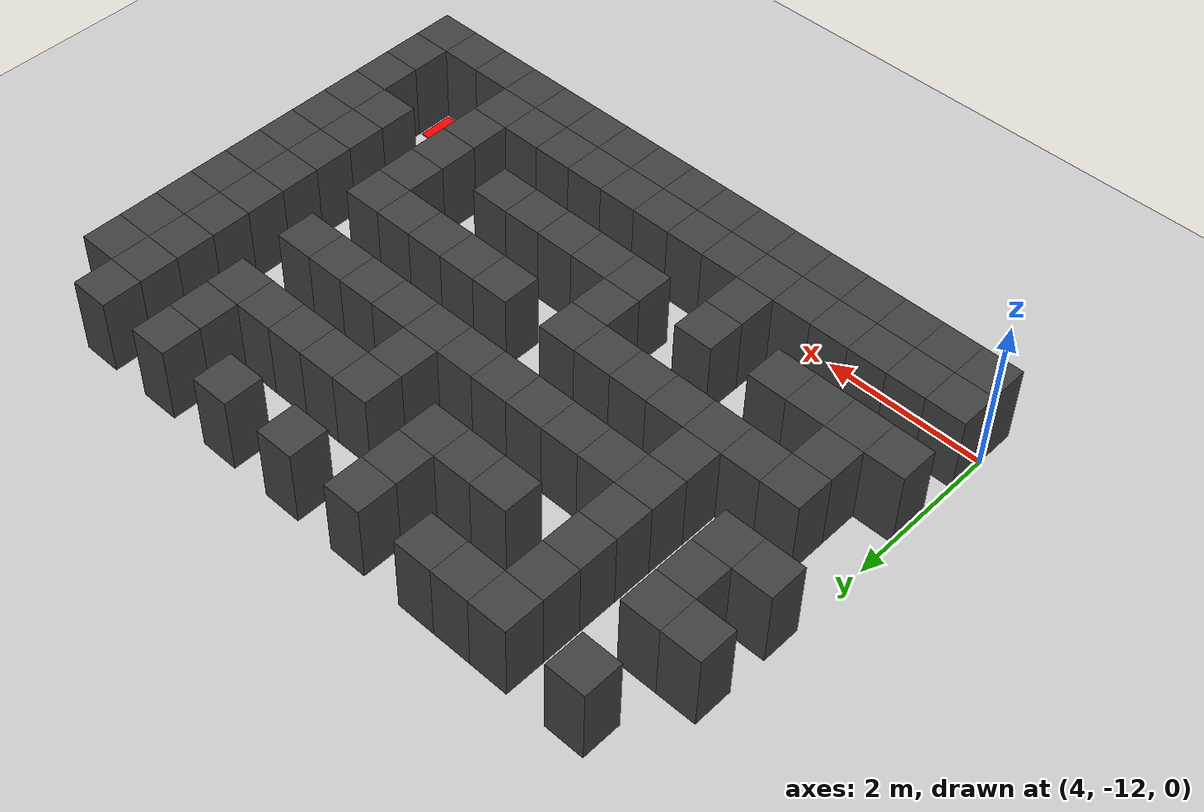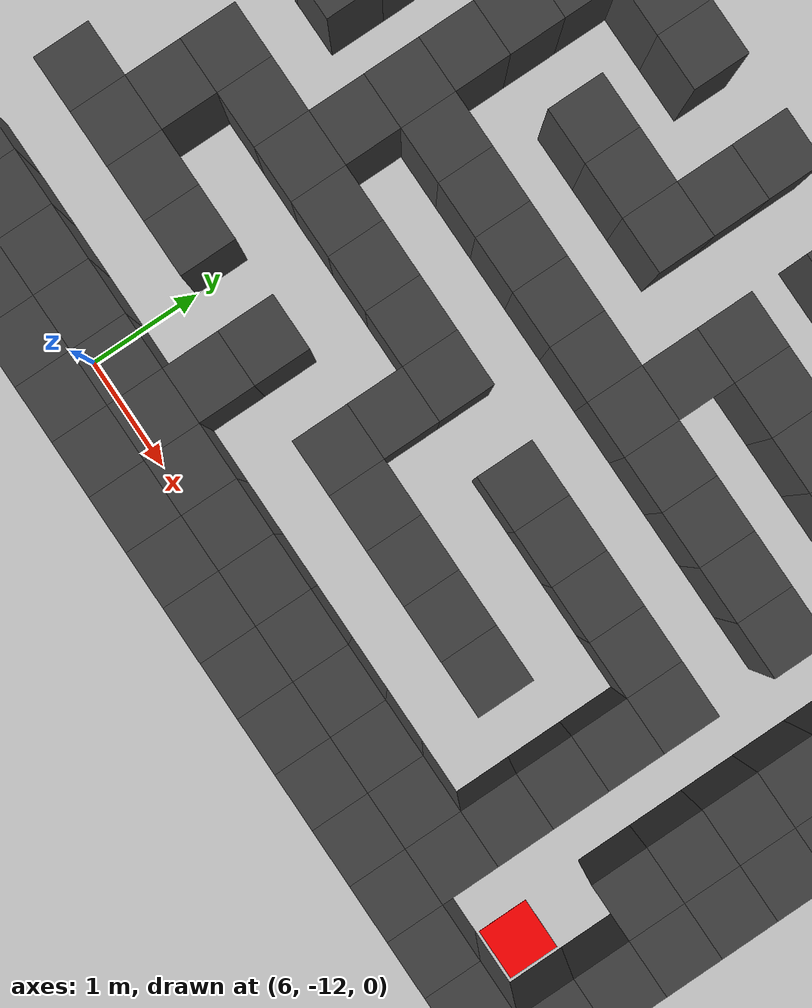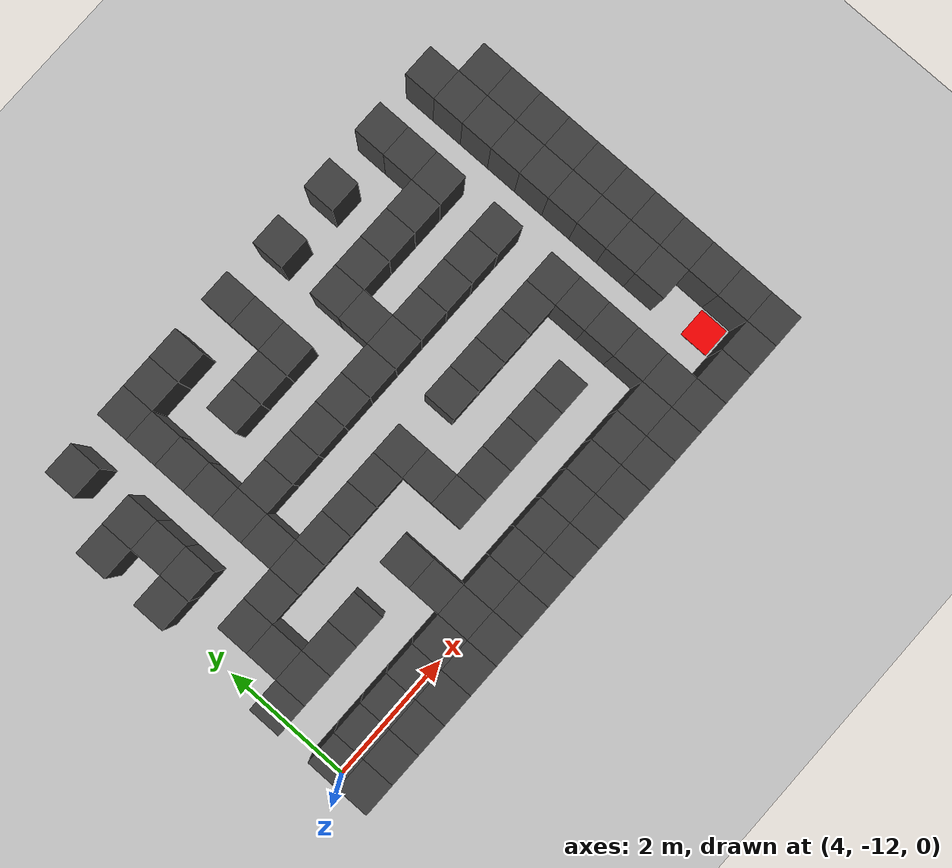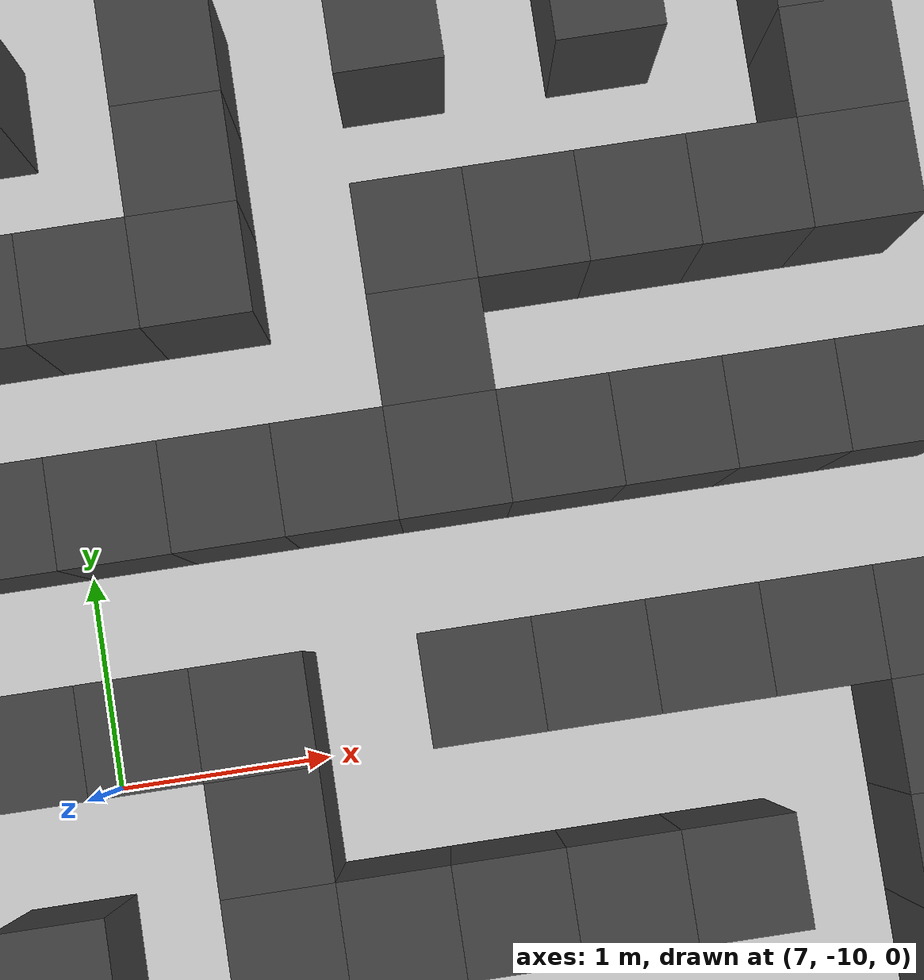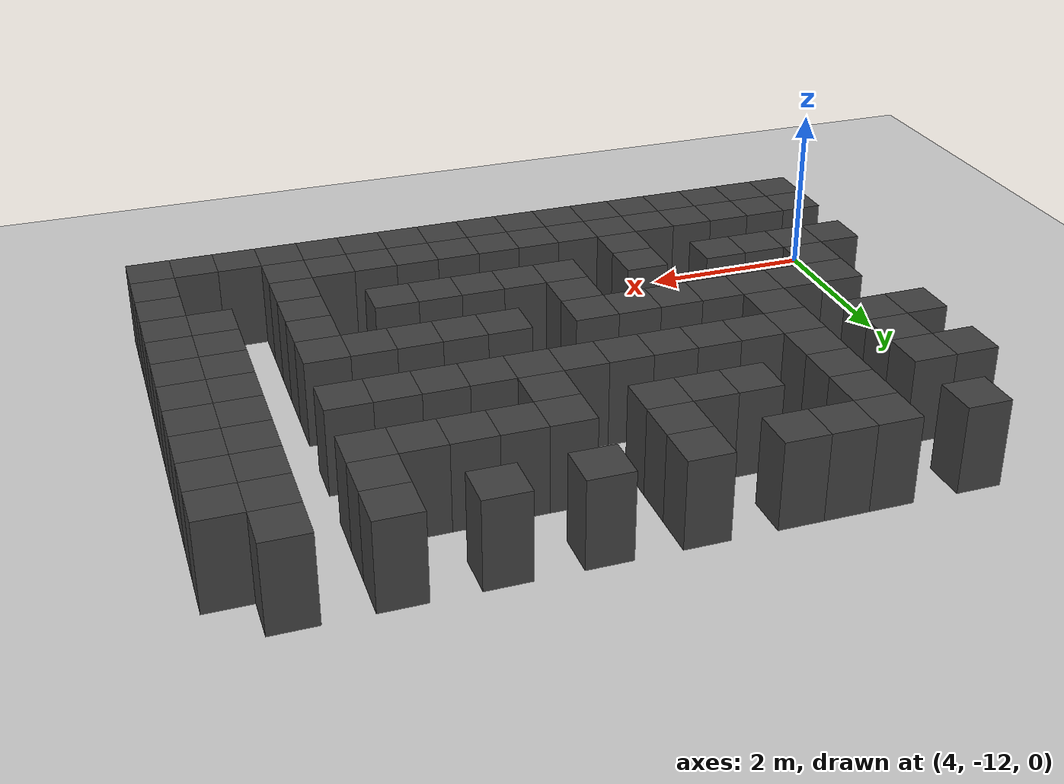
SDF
<sdf version="1.7">
 <world name="map_18505">
  <model name="ground_plane">
   <static>true</static>
   <link name="link">
    <collision name="collision">
     <geometry><plane><normal>0 0 1</normal><size>200 200</size></plane></geometry>
    </collision>
    <visual name="visual">
     <geometry><plane><normal>0 0 1</normal><size>200 200</size></plane></geometry>
     <material><ambient>0.8 0.8 0.8 1</ambient><diffuse>0.8 0.8 0.8 1</diffuse></material>
    </visual>
   </link>
  </model>
  <model name="maze_environment">
   <static>true</static>
   <link name="wall_982">
    <pose>4.750 -6.750 0.500 0 0 0</pose>
    <collision name="col"><geometry><box><size>0.5 0.5 1.0</size></box></geometry></collision>
    <visual name="vis">
     <geometry><box><size>0.5 0.5 1.0</size></box></geometry>
     <material><ambient>0.15 0.15 0.15 1</ambient><diffuse>0.25 0.25 0.25 1</diffuse></material>
    </visual>
   </link>
   <link name="wall_983">
    <pose>5.750 -6.750 0.500 0 0 0</pose>
    <collision name="col"><geometry><box><size>0.5 0.5 1.0</size></box></geometry></collision>
    <visual name="vis">
     <geometry><box><size>0.5 0.5 1.0</size></box></geometry>
     <material><ambient>0.15 0.15 0.15 1</ambient><diffuse>0.25 0.25 0.25 1</diffuse></material>
    </visual>
   </link>
   <link name="wall_984">
    <pose>6.250 -6.750 0.500 0 0 0</pose>
    <collision name="col"><geometry><box><size>0.5 0.5 1.0</size></box></geometry></collision>
    <visual name="vis">
     <geometry><box><size>0.5 0.5 1.0</size></box></geometry>
     <material><ambient>0.15 0.15 0.15 1</ambient><diffuse>0.25 0.25 0.25 1</diffuse></material>
    </visual>
   </link>
   <link name="wall_985">
    <pose>6.750 -6.750 0.500 0 0 0</pose>
    <collision name="col"><geometry><box><size>0.5 0.5 1.0</size></box></geometry></collision>
    <visual name="vis">
     <geometry><box><size>0.5 0.5 1.0</size></box></geometry>
     <material><ambient>0.15 0.15 0.15 1</ambient><diffuse>0.25 0.25 0.25 1</diffuse></material>
    </visual>
   </link>
   <link name="wall_986">
    <pose>7.750 -6.750 0.500 0 0 0</pose>
    <collision name="col"><geometry><box><size>0.5 0.5 1.0</size></box></geometry></collision>
    <visual name="vis">
     <geometry><box><size>0.5 0.5 1.0</size></box></geometry>
     <material><ambient>0.15 0.15 0.15 1</ambient><diffuse>0.25 0.25 0.25 1</diffuse></material>
    </visual>
   </link>
   <link name="wall_987">
    <pose>8.750 -6.750 0.500 0 0 0</pose>
    <collision name="col"><geometry><box><size>0.5 0.5 1.0</size></box></geometry></collision>
    <visual name="vis">
     <geometry><box><size>0.5 0.5 1.0</size></box></geometry>
     <material><ambient>0.15 0.15 0.15 1</ambient><diffuse>0.25 0.25 0.25 1</diffuse></material>
    </visual>
   </link>
   <link name="wall_988">
    <pose>9.750 -6.750 0.500 0 0 0</pose>
    <collision name="col"><geometry><box><size>0.5 0.5 1.0</size></box></geometry></collision>
    <visual name="vis">
     <geometry><box><size>0.5 0.5 1.0</size></box></geometry>
     <material><ambient>0.15 0.15 0.15 1</ambient><diffuse>0.25 0.25 0.25 1</diffuse></material>
    </visual>
   </link>
   <link name="wall_989">
    <pose>10.750 -6.750 0.500 0 0 0</pose>
    <collision name="col"><geometry><box><size>0.5 0.5 1.0</size></box></geometry></collision>
    <visual name="vis">
     <geometry><box><size>0.5 0.5 1.0</size></box></geometry>
     <material><ambient>0.15 0.15 0.15 1</ambient><diffuse>0.25 0.25 0.25 1</diffuse></material>
    </visual>
   </link>
   <link name="wall_990">
    <pose>11.750 -6.750 0.500 0 0 0</pose>
    <collision name="col"><geometry><box><size>0.5 0.5 1.0</size></box></geometry></collision>
    <visual name="vis">
     <geometry><box><size>0.5 0.5 1.0</size></box></geometry>
     <material><ambient>0.15 0.15 0.15 1</ambient><diffuse>0.25 0.25 0.25 1</diffuse></material>
    </visual>
   </link>
   <link name="wall_999">
    <pose>5.750 -7.250 0.500 0 0 0</pose>
    <collision name="col"><geometry><box><size>0.5 0.5 1.0</size></box></geometry></collision>
    <visual name="vis">
     <geometry><box><size>0.5 0.5 1.0</size></box></geometry>
     <material><ambient>0.15 0.15 0.15 1</ambient><diffuse>0.25 0.25 0.25 1</diffuse></material>
    </visual>
   </link>
   <link name="wall_1000">
    <pose>7.750 -7.250 0.500 0 0 0</pose>
    <collision name="col"><geometry><box><size>0.5 0.5 1.0</size></box></geometry></collision>
    <visual name="vis">
     <geometry><box><size>0.5 0.5 1.0</size></box></geometry>
     <material><ambient>0.15 0.15 0.15 1</ambient><diffuse>0.25 0.25 0.25 1</diffuse></material>
    </visual>
   </link>
   <link name="wall_1001">
    <pose>10.750 -7.250 0.500 0 0 0</pose>
    <collision name="col"><geometry><box><size>0.5 0.5 1.0</size></box></geometry></collision>
    <visual name="vis">
     <geometry><box><size>0.5 0.5 1.0</size></box></geometry>
     <material><ambient>0.15 0.15 0.15 1</ambient><diffuse>0.25 0.25 0.25 1</diffuse></material>
    </visual>
   </link>
   <link name="wall_1002">
    <pose>11.750 -7.250 0.500 0 0 0</pose>
    <collision name="col"><geometry><box><size>0.5 0.5 1.0</size></box></geometry></collision>
    <visual name="vis">
     <geometry><box><size>0.5 0.5 1.0</size></box></geometry>
     <material><ambient>0.15 0.15 0.15 1</ambient><diffuse>0.25 0.25 0.25 1</diffuse></material>
    </visual>
   </link>
   <link name="wall_1003">
    <pose>12.250 -7.250 0.500 0 0 0</pose>
    <collision name="col"><geometry><box><size>0.5 0.5 1.0</size></box></geometry></collision>
    <visual name="vis">
     <geometry><box><size>0.5 0.5 1.0</size></box></geometry>
     <material><ambient>0.15 0.15 0.15 1</ambient><diffuse>0.25 0.25 0.25 1</diffuse></material>
    </visual>
   </link>
   <link name="wall_1028">
    <pose>4.250 -7.750 0.500 0 0 0</pose>
    <collision name="col"><geometry><box><size>0.5 0.5 1.0</size></box></geometry></collision>
    <visual name="vis">
     <geometry><box><size>0.5 0.5 1.0</size></box></geometry>
     <material><ambient>0.15 0.15 0.15 1</ambient><diffuse>0.25 0.25 0.25 1</diffuse></material>
    </visual>
   </link>
   <link name="wall_1029">
    <pose>4.750 -7.750 0.500 0 0 0</pose>
    <collision name="col"><geometry><box><size>0.5 0.5 1.0</size></box></geometry></collision>
    <visual name="vis">
     <geometry><box><size>0.5 0.5 1.0</size></box></geometry>
     <material><ambient>0.15 0.15 0.15 1</ambient><diffuse>0.25 0.25 0.25 1</diffuse></material>
    </visual>
   </link>
   <link name="wall_1030">
    <pose>5.750 -7.750 0.500 0 0 0</pose>
    <collision name="col"><geometry><box><size>0.5 0.5 1.0</size></box></geometry></collision>
    <visual name="vis">
     <geometry><box><size>0.5 0.5 1.0</size></box></geometry>
     <material><ambient>0.15 0.15 0.15 1</ambient><diffuse>0.25 0.25 0.25 1</diffuse></material>
    </visual>
   </link>
   <link name="wall_1031">
    <pose>6.750 -7.750 0.500 0 0 0</pose>
    <collision name="col"><geometry><box><size>0.5 0.5 1.0</size></box></geometry></collision>
    <visual name="vis">
     <geometry><box><size>0.5 0.5 1.0</size></box></geometry>
     <material><ambient>0.15 0.15 0.15 1</ambient><diffuse>0.25 0.25 0.25 1</diffuse></material>
    </visual>
   </link>
   <link name="wall_1032">
    <pose>7.250 -7.750 0.500 0 0 0</pose>
    <collision name="col"><geometry><box><size>0.5 0.5 1.0</size></box></geometry></collision>
    <visual name="vis">
     <geometry><box><size>0.5 0.5 1.0</size></box></geometry>
     <material><ambient>0.15 0.15 0.15 1</ambient><diffuse>0.25 0.25 0.25 1</diffuse></material>
    </visual>
   </link>
   <link name="wall_1033">
    <pose>7.750 -7.750 0.500 0 0 0</pose>
    <collision name="col"><geometry><box><size>0.5 0.5 1.0</size></box></geometry></collision>
    <visual name="vis">
     <geometry><box><size>0.5 0.5 1.0</size></box></geometry>
     <material><ambient>0.15 0.15 0.15 1</ambient><diffuse>0.25 0.25 0.25 1</diffuse></material>
    </visual>
   </link>
   <link name="wall_1034">
    <pose>8.750 -7.750 0.500 0 0 0</pose>
    <collision name="col"><geometry><box><size>0.5 0.5 1.0</size></box></geometry></collision>
    <visual name="vis">
     <geometry><box><size>0.5 0.5 1.0</size></box></geometry>
     <material><ambient>0.15 0.15 0.15 1</ambient><diffuse>0.25 0.25 0.25 1</diffuse></material>
    </visual>
   </link>
   <link name="wall_1035">
    <pose>9.250 -7.750 0.500 0 0 0</pose>
    <collision name="col"><geometry><box><size>0.5 0.5 1.0</size></box></geometry></collision>
    <visual name="vis">
     <geometry><box><size>0.5 0.5 1.0</size></box></geometry>
     <material><ambient>0.15 0.15 0.15 1</ambient><diffuse>0.25 0.25 0.25 1</diffuse></material>
    </visual>
   </link>
   <link name="wall_1036">
    <pose>9.750 -7.750 0.500 0 0 0</pose>
    <collision name="col"><geometry><box><size>0.5 0.5 1.0</size></box></geometry></collision>
    <visual name="vis">
     <geometry><box><size>0.5 0.5 1.0</size></box></geometry>
     <material><ambient>0.15 0.15 0.15 1</ambient><diffuse>0.25 0.25 0.25 1</diffuse></material>
    </visual>
   </link>
   <link name="wall_1037">
    <pose>10.250 -7.750 0.500 0 0 0</pose>
    <collision name="col"><geometry><box><size>0.5 0.5 1.0</size></box></geometry></collision>
    <visual name="vis">
     <geometry><box><size>0.5 0.5 1.0</size></box></geometry>
     <material><ambient>0.15 0.15 0.15 1</ambient><diffuse>0.25 0.25 0.25 1</diffuse></material>
    </visual>
   </link>
   <link name="wall_1038">
    <pose>10.750 -7.750 0.500 0 0 0</pose>
    <collision name="col"><geometry><box><size>0.5 0.5 1.0</size></box></geometry></collision>
    <visual name="vis">
     <geometry><box><size>0.5 0.5 1.0</size></box></geometry>
     <material><ambient>0.15 0.15 0.15 1</ambient><diffuse>0.25 0.25 0.25 1</diffuse></material>
    </visual>
   </link>
   <link name="wall_1039">
    <pose>11.750 -7.750 0.500 0 0 0</pose>
    <collision name="col"><geometry><box><size>0.5 0.5 1.0</size></box></geometry></collision>
    <visual name="vis">
     <geometry><box><size>0.5 0.5 1.0</size></box></geometry>
     <material><ambient>0.15 0.15 0.15 1</ambient><diffuse>0.25 0.25 0.25 1</diffuse></material>
    </visual>
   </link>
   <link name="wall_1040">
    <pose>12.250 -7.750 0.500 0 0 0</pose>
    <collision name="col"><geometry><box><size>0.5 0.5 1.0</size></box></geometry></collision>
    <visual name="vis">
     <geometry><box><size>0.5 0.5 1.0</size></box></geometry>
     <material><ambient>0.15 0.15 0.15 1</ambient><diffuse>0.25 0.25 0.25 1</diffuse></material>
    </visual>
   </link>
   <link name="wall_1049">
    <pose>4.750 -8.250 0.500 0 0 0</pose>
    <collision name="col"><geometry><box><size>0.5 0.5 1.0</size></box></geometry></collision>
    <visual name="vis">
     <geometry><box><size>0.5 0.5 1.0</size></box></geometry>
     <material><ambient>0.15 0.15 0.15 1</ambient><diffuse>0.25 0.25 0.25 1</diffuse></material>
    </visual>
   </link>
   <link name="wall_1050">
    <pose>5.750 -8.250 0.500 0 0 0</pose>
    <collision name="col"><geometry><box><size>0.5 0.5 1.0</size></box></geometry></collision>
    <visual name="vis">
     <geometry><box><size>0.5 0.5 1.0</size></box></geometry>
     <material><ambient>0.15 0.15 0.15 1</ambient><diffuse>0.25 0.25 0.25 1</diffuse></material>
    </visual>
   </link>
   <link name="wall_1051">
    <pose>8.750 -8.250 0.500 0 0 0</pose>
    <collision name="col"><geometry><box><size>0.5 0.5 1.0</size></box></geometry></collision>
    <visual name="vis">
     <geometry><box><size>0.5 0.5 1.0</size></box></geometry>
     <material><ambient>0.15 0.15 0.15 1</ambient><diffuse>0.25 0.25 0.25 1</diffuse></material>
    </visual>
   </link>
   <link name="wall_1052">
    <pose>11.750 -8.250 0.500 0 0 0</pose>
    <collision name="col"><geometry><box><size>0.5 0.5 1.0</size></box></geometry></collision>
    <visual name="vis">
     <geometry><box><size>0.5 0.5 1.0</size></box></geometry>
     <material><ambient>0.15 0.15 0.15 1</ambient><diffuse>0.25 0.25 0.25 1</diffuse></material>
    </visual>
   </link>
   <link name="wall_1053">
    <pose>12.250 -8.250 0.500 0 0 0</pose>
    <collision name="col"><geometry><box><size>0.5 0.5 1.0</size></box></geometry></collision>
    <visual name="vis">
     <geometry><box><size>0.5 0.5 1.0</size></box></geometry>
     <material><ambient>0.15 0.15 0.15 1</ambient><diffuse>0.25 0.25 0.25 1</diffuse></material>
    </visual>
   </link>
   <link name="wall_1078">
    <pose>4.250 -8.750 0.500 0 0 0</pose>
    <collision name="col"><geometry><box><size>0.5 0.5 1.0</size></box></geometry></collision>
    <visual name="vis">
     <geometry><box><size>0.5 0.5 1.0</size></box></geometry>
     <material><ambient>0.15 0.15 0.15 1</ambient><diffuse>0.25 0.25 0.25 1</diffuse></material>
    </visual>
   </link>
   <link name="wall_1079">
    <pose>4.750 -8.750 0.500 0 0 0</pose>
    <collision name="col"><geometry><box><size>0.5 0.5 1.0</size></box></geometry></collision>
    <visual name="vis">
     <geometry><box><size>0.5 0.5 1.0</size></box></geometry>
     <material><ambient>0.15 0.15 0.15 1</ambient><diffuse>0.25 0.25 0.25 1</diffuse></material>
    </visual>
   </link>
   <link name="wall_1080">
    <pose>5.750 -8.750 0.500 0 0 0</pose>
    <collision name="col"><geometry><box><size>0.5 0.5 1.0</size></box></geometry></collision>
    <visual name="vis">
     <geometry><box><size>0.5 0.5 1.0</size></box></geometry>
     <material><ambient>0.15 0.15 0.15 1</ambient><diffuse>0.25 0.25 0.25 1</diffuse></material>
    </visual>
   </link>
   <link name="wall_1081">
    <pose>6.250 -8.750 0.500 0 0 0</pose>
    <collision name="col"><geometry><box><size>0.5 0.5 1.0</size></box></geometry></collision>
    <visual name="vis">
     <geometry><box><size>0.5 0.5 1.0</size></box></geometry>
     <material><ambient>0.15 0.15 0.15 1</ambient><diffuse>0.25 0.25 0.25 1</diffuse></material>
    </visual>
   </link>
   <link name="wall_1082">
    <pose>6.750 -8.750 0.500 0 0 0</pose>
    <collision name="col"><geometry><box><size>0.5 0.5 1.0</size></box></geometry></collision>
    <visual name="vis">
     <geometry><box><size>0.5 0.5 1.0</size></box></geometry>
     <material><ambient>0.15 0.15 0.15 1</ambient><diffuse>0.25 0.25 0.25 1</diffuse></material>
    </visual>
   </link>
   <link name="wall_1083">
    <pose>7.250 -8.750 0.500 0 0 0</pose>
    <collision name="col"><geometry><box><size>0.5 0.5 1.0</size></box></geometry></collision>
    <visual name="vis">
     <geometry><box><size>0.5 0.5 1.0</size></box></geometry>
     <material><ambient>0.15 0.15 0.15 1</ambient><diffuse>0.25 0.25 0.25 1</diffuse></material>
    </visual>
   </link>
   <link name="wall_1084">
    <pose>7.750 -8.750 0.500 0 0 0</pose>
    <collision name="col"><geometry><box><size>0.5 0.5 1.0</size></box></geometry></collision>
    <visual name="vis">
     <geometry><box><size>0.5 0.5 1.0</size></box></geometry>
     <material><ambient>0.15 0.15 0.15 1</ambient><diffuse>0.25 0.25 0.25 1</diffuse></material>
    </visual>
   </link>
   <link name="wall_1085">
    <pose>8.250 -8.750 0.500 0 0 0</pose>
    <collision name="col"><geometry><box><size>0.5 0.5 1.0</size></box></geometry></collision>
    <visual name="vis">
     <geometry><box><size>0.5 0.5 1.0</size></box></geometry>
     <material><ambient>0.15 0.15 0.15 1</ambient><diffuse>0.25 0.25 0.25 1</diffuse></material>
    </visual>
   </link>
   <link name="wall_1086">
    <pose>8.750 -8.750 0.500 0 0 0</pose>
    <collision name="col"><geometry><box><size>0.5 0.5 1.0</size></box></geometry></collision>
    <visual name="vis">
     <geometry><box><size>0.5 0.5 1.0</size></box></geometry>
     <material><ambient>0.15 0.15 0.15 1</ambient><diffuse>0.25 0.25 0.25 1</diffuse></material>
    </visual>
   </link>
   <link name="wall_1087">
    <pose>9.250 -8.750 0.500 0 0 0</pose>
    <collision name="col"><geometry><box><size>0.5 0.5 1.0</size></box></geometry></collision>
    <visual name="vis">
     <geometry><box><size>0.5 0.5 1.0</size></box></geometry>
     <material><ambient>0.15 0.15 0.15 1</ambient><diffuse>0.25 0.25 0.25 1</diffuse></material>
    </visual>
   </link>
   <link name="wall_1088">
    <pose>9.750 -8.750 0.500 0 0 0</pose>
    <collision name="col"><geometry><box><size>0.5 0.5 1.0</size></box></geometry></collision>
    <visual name="vis">
     <geometry><box><size>0.5 0.5 1.0</size></box></geometry>
     <material><ambient>0.15 0.15 0.15 1</ambient><diffuse>0.25 0.25 0.25 1</diffuse></material>
    </visual>
   </link>
   <link name="wall_1089">
    <pose>10.250 -8.750 0.500 0 0 0</pose>
    <collision name="col"><geometry><box><size>0.5 0.5 1.0</size></box></geometry></collision>
    <visual name="vis">
     <geometry><box><size>0.5 0.5 1.0</size></box></geometry>
     <material><ambient>0.15 0.15 0.15 1</ambient><diffuse>0.25 0.25 0.25 1</diffuse></material>
    </visual>
   </link>
   <link name="wall_1090">
    <pose>10.750 -8.750 0.500 0 0 0</pose>
    <collision name="col"><geometry><box><size>0.5 0.5 1.0</size></box></geometry></collision>
    <visual name="vis">
     <geometry><box><size>0.5 0.5 1.0</size></box></geometry>
     <material><ambient>0.15 0.15 0.15 1</ambient><diffuse>0.25 0.25 0.25 1</diffuse></material>
    </visual>
   </link>
   <link name="wall_1091">
    <pose>11.750 -8.750 0.500 0 0 0</pose>
    <collision name="col"><geometry><box><size>0.5 0.5 1.0</size></box></geometry></collision>
    <visual name="vis">
     <geometry><box><size>0.5 0.5 1.0</size></box></geometry>
     <material><ambient>0.15 0.15 0.15 1</ambient><diffuse>0.25 0.25 0.25 1</diffuse></material>
    </visual>
   </link>
   <link name="wall_1092">
    <pose>12.250 -8.750 0.500 0 0 0</pose>
    <collision name="col"><geometry><box><size>0.5 0.5 1.0</size></box></geometry></collision>
    <visual name="vis">
     <geometry><box><size>0.5 0.5 1.0</size></box></geometry>
     <material><ambient>0.15 0.15 0.15 1</ambient><diffuse>0.25 0.25 0.25 1</diffuse></material>
    </visual>
   </link>
   <link name="wall_1101">
    <pose>5.750 -9.250 0.500 0 0 0</pose>
    <collision name="col"><geometry><box><size>0.5 0.5 1.0</size></box></geometry></collision>
    <visual name="vis">
     <geometry><box><size>0.5 0.5 1.0</size></box></geometry>
     <material><ambient>0.15 0.15 0.15 1</ambient><diffuse>0.25 0.25 0.25 1</diffuse></material>
    </visual>
   </link>
   <link name="wall_1102">
    <pose>11.750 -9.250 0.500 0 0 0</pose>
    <collision name="col"><geometry><box><size>0.5 0.5 1.0</size></box></geometry></collision>
    <visual name="vis">
     <geometry><box><size>0.5 0.5 1.0</size></box></geometry>
     <material><ambient>0.15 0.15 0.15 1</ambient><diffuse>0.25 0.25 0.25 1</diffuse></material>
    </visual>
   </link>
   <link name="wall_1103">
    <pose>12.250 -9.250 0.500 0 0 0</pose>
    <collision name="col"><geometry><box><size>0.5 0.5 1.0</size></box></geometry></collision>
    <visual name="vis">
     <geometry><box><size>0.5 0.5 1.0</size></box></geometry>
     <material><ambient>0.15 0.15 0.15 1</ambient><diffuse>0.25 0.25 0.25 1</diffuse></material>
    </visual>
   </link>
   <link name="wall_1130">
    <pose>4.750 -9.750 0.500 0 0 0</pose>
    <collision name="col"><geometry><box><size>0.5 0.5 1.0</size></box></geometry></collision>
    <visual name="vis">
     <geometry><box><size>0.5 0.5 1.0</size></box></geometry>
     <material><ambient>0.15 0.15 0.15 1</ambient><diffuse>0.25 0.25 0.25 1</diffuse></material>
    </visual>
   </link>
   <link name="wall_1131">
    <pose>5.250 -9.750 0.500 0 0 0</pose>
    <collision name="col"><geometry><box><size>0.5 0.5 1.0</size></box></geometry></collision>
    <visual name="vis">
     <geometry><box><size>0.5 0.5 1.0</size></box></geometry>
     <material><ambient>0.15 0.15 0.15 1</ambient><diffuse>0.25 0.25 0.25 1</diffuse></material>
    </visual>
   </link>
   <link name="wall_1132">
    <pose>5.750 -9.750 0.500 0 0 0</pose>
    <collision name="col"><geometry><box><size>0.5 0.5 1.0</size></box></geometry></collision>
    <visual name="vis">
     <geometry><box><size>0.5 0.5 1.0</size></box></geometry>
     <material><ambient>0.15 0.15 0.15 1</ambient><diffuse>0.25 0.25 0.25 1</diffuse></material>
    </visual>
   </link>
   <link name="wall_1133">
    <pose>6.250 -9.750 0.500 0 0 0</pose>
    <collision name="col"><geometry><box><size>0.5 0.5 1.0</size></box></geometry></collision>
    <visual name="vis">
     <geometry><box><size>0.5 0.5 1.0</size></box></geometry>
     <material><ambient>0.15 0.15 0.15 1</ambient><diffuse>0.25 0.25 0.25 1</diffuse></material>
    </visual>
   </link>
   <link name="wall_1134">
    <pose>6.750 -9.750 0.500 0 0 0</pose>
    <collision name="col"><geometry><box><size>0.5 0.5 1.0</size></box></geometry></collision>
    <visual name="vis">
     <geometry><box><size>0.5 0.5 1.0</size></box></geometry>
     <material><ambient>0.15 0.15 0.15 1</ambient><diffuse>0.25 0.25 0.25 1</diffuse></material>
    </visual>
   </link>
   <link name="wall_1135">
    <pose>7.250 -9.750 0.500 0 0 0</pose>
    <collision name="col"><geometry><box><size>0.5 0.5 1.0</size></box></geometry></collision>
    <visual name="vis">
     <geometry><box><size>0.5 0.5 1.0</size></box></geometry>
     <material><ambient>0.15 0.15 0.15 1</ambient><diffuse>0.25 0.25 0.25 1</diffuse></material>
    </visual>
   </link>
   <link name="wall_1136">
    <pose>7.750 -9.750 0.500 0 0 0</pose>
    <collision name="col"><geometry><box><size>0.5 0.5 1.0</size></box></geometry></collision>
    <visual name="vis">
     <geometry><box><size>0.5 0.5 1.0</size></box></geometry>
     <material><ambient>0.15 0.15 0.15 1</ambient><diffuse>0.25 0.25 0.25 1</diffuse></material>
    </visual>
   </link>
   <link name="wall_1137">
    <pose>8.750 -9.750 0.500 0 0 0</pose>
    <collision name="col"><geometry><box><size>0.5 0.5 1.0</size></box></geometry></collision>
    <visual name="vis">
     <geometry><box><size>0.5 0.5 1.0</size></box></geometry>
     <material><ambient>0.15 0.15 0.15 1</ambient><diffuse>0.25 0.25 0.25 1</diffuse></material>
    </visual>
   </link>
   <link name="wall_1138">
    <pose>9.250 -9.750 0.500 0 0 0</pose>
    <collision name="col"><geometry><box><size>0.5 0.5 1.0</size></box></geometry></collision>
    <visual name="vis">
     <geometry><box><size>0.5 0.5 1.0</size></box></geometry>
     <material><ambient>0.15 0.15 0.15 1</ambient><diffuse>0.25 0.25 0.25 1</diffuse></material>
    </visual>
   </link>
   <link name="wall_1139">
    <pose>9.750 -9.750 0.500 0 0 0</pose>
    <collision name="col"><geometry><box><size>0.5 0.5 1.0</size></box></geometry></collision>
    <visual name="vis">
     <geometry><box><size>0.5 0.5 1.0</size></box></geometry>
     <material><ambient>0.15 0.15 0.15 1</ambient><diffuse>0.25 0.25 0.25 1</diffuse></material>
    </visual>
   </link>
   <link name="wall_1140">
    <pose>10.250 -9.750 0.500 0 0 0</pose>
    <collision name="col"><geometry><box><size>0.5 0.5 1.0</size></box></geometry></collision>
    <visual name="vis">
     <geometry><box><size>0.5 0.5 1.0</size></box></geometry>
     <material><ambient>0.15 0.15 0.15 1</ambient><diffuse>0.25 0.25 0.25 1</diffuse></material>
    </visual>
   </link>
   <link name="wall_1141">
    <pose>10.750 -9.750 0.500 0 0 0</pose>
    <collision name="col"><geometry><box><size>0.5 0.5 1.0</size></box></geometry></collision>
    <visual name="vis">
     <geometry><box><size>0.5 0.5 1.0</size></box></geometry>
     <material><ambient>0.15 0.15 0.15 1</ambient><diffuse>0.25 0.25 0.25 1</diffuse></material>
    </visual>
   </link>
   <link name="wall_1142">
    <pose>11.750 -9.750 0.500 0 0 0</pose>
    <collision name="col"><geometry><box><size>0.5 0.5 1.0</size></box></geometry></collision>
    <visual name="vis">
     <geometry><box><size>0.5 0.5 1.0</size></box></geometry>
     <material><ambient>0.15 0.15 0.15 1</ambient><diffuse>0.25 0.25 0.25 1</diffuse></material>
    </visual>
   </link>
   <link name="wall_1143">
    <pose>12.250 -9.750 0.500 0 0 0</pose>
    <collision name="col"><geometry><box><size>0.5 0.5 1.0</size></box></geometry></collision>
    <visual name="vis">
     <geometry><box><size>0.5 0.5 1.0</size></box></geometry>
     <material><ambient>0.15 0.15 0.15 1</ambient><diffuse>0.25 0.25 0.25 1</diffuse></material>
    </visual>
   </link>
   <link name="wall_1152">
    <pose>4.750 -10.250 0.500 0 0 0</pose>
    <collision name="col"><geometry><box><size>0.5 0.5 1.0</size></box></geometry></collision>
    <visual name="vis">
     <geometry><box><size>0.5 0.5 1.0</size></box></geometry>
     <material><ambient>0.15 0.15 0.15 1</ambient><diffuse>0.25 0.25 0.25 1</diffuse></material>
    </visual>
   </link>
   <link name="wall_1153">
    <pose>7.750 -10.250 0.500 0 0 0</pose>
    <collision name="col"><geometry><box><size>0.5 0.5 1.0</size></box></geometry></collision>
    <visual name="vis">
     <geometry><box><size>0.5 0.5 1.0</size></box></geometry>
     <material><ambient>0.15 0.15 0.15 1</ambient><diffuse>0.25 0.25 0.25 1</diffuse></material>
    </visual>
   </link>
   <link name="wall_1154">
    <pose>10.750 -10.250 0.500 0 0 0</pose>
    <collision name="col"><geometry><box><size>0.5 0.5 1.0</size></box></geometry></collision>
    <visual name="vis">
     <geometry><box><size>0.5 0.5 1.0</size></box></geometry>
     <material><ambient>0.15 0.15 0.15 1</ambient><diffuse>0.25 0.25 0.25 1</diffuse></material>
    </visual>
   </link>
   <link name="wall_1155">
    <pose>11.750 -10.250 0.500 0 0 0</pose>
    <collision name="col"><geometry><box><size>0.5 0.5 1.0</size></box></geometry></collision>
    <visual name="vis">
     <geometry><box><size>0.5 0.5 1.0</size></box></geometry>
     <material><ambient>0.15 0.15 0.15 1</ambient><diffuse>0.25 0.25 0.25 1</diffuse></material>
    </visual>
   </link>
   <link name="wall_1156">
    <pose>12.250 -10.250 0.500 0 0 0</pose>
    <collision name="col"><geometry><box><size>0.5 0.5 1.0</size></box></geometry></collision>
    <visual name="vis">
     <geometry><box><size>0.5 0.5 1.0</size></box></geometry>
     <material><ambient>0.15 0.15 0.15 1</ambient><diffuse>0.25 0.25 0.25 1</diffuse></material>
    </visual>
   </link>
   <link name="wall_1180">
    <pose>4.250 -10.750 0.500 0 0 0</pose>
    <collision name="col"><geometry><box><size>0.5 0.5 1.0</size></box></geometry></collision>
    <visual name="vis">
     <geometry><box><size>0.5 0.5 1.0</size></box></geometry>
     <material><ambient>0.15 0.15 0.15 1</ambient><diffuse>0.25 0.25 0.25 1</diffuse></material>
    </visual>
   </link>
   <link name="wall_1181">
    <pose>4.750 -10.750 0.500 0 0 0</pose>
    <collision name="col"><geometry><box><size>0.5 0.5 1.0</size></box></geometry></collision>
    <visual name="vis">
     <geometry><box><size>0.5 0.5 1.0</size></box></geometry>
     <material><ambient>0.15 0.15 0.15 1</ambient><diffuse>0.25 0.25 0.25 1</diffuse></material>
    </visual>
   </link>
   <link name="wall_1182">
    <pose>5.250 -10.750 0.500 0 0 0</pose>
    <collision name="col"><geometry><box><size>0.5 0.5 1.0</size></box></geometry></collision>
    <visual name="vis">
     <geometry><box><size>0.5 0.5 1.0</size></box></geometry>
     <material><ambient>0.15 0.15 0.15 1</ambient><diffuse>0.25 0.25 0.25 1</diffuse></material>
    </visual>
   </link>
   <link name="wall_1183">
    <pose>5.750 -10.750 0.500 0 0 0</pose>
    <collision name="col"><geometry><box><size>0.5 0.5 1.0</size></box></geometry></collision>
    <visual name="vis">
     <geometry><box><size>0.5 0.5 1.0</size></box></geometry>
     <material><ambient>0.15 0.15 0.15 1</ambient><diffuse>0.25 0.25 0.25 1</diffuse></material>
    </visual>
   </link>
   <link name="wall_1184">
    <pose>6.750 -10.750 0.500 0 0 0</pose>
    <collision name="col"><geometry><box><size>0.5 0.5 1.0</size></box></geometry></collision>
    <visual name="vis">
     <geometry><box><size>0.5 0.5 1.0</size></box></geometry>
     <material><ambient>0.15 0.15 0.15 1</ambient><diffuse>0.25 0.25 0.25 1</diffuse></material>
    </visual>
   </link>
   <link name="wall_1185">
    <pose>7.750 -10.750 0.500 0 0 0</pose>
    <collision name="col"><geometry><box><size>0.5 0.5 1.0</size></box></geometry></collision>
    <visual name="vis">
     <geometry><box><size>0.5 0.5 1.0</size></box></geometry>
     <material><ambient>0.15 0.15 0.15 1</ambient><diffuse>0.25 0.25 0.25 1</diffuse></material>
    </visual>
   </link>
   <link name="wall_1186">
    <pose>8.250 -10.750 0.500 0 0 0</pose>
    <collision name="col"><geometry><box><size>0.5 0.5 1.0</size></box></geometry></collision>
    <visual name="vis">
     <geometry><box><size>0.5 0.5 1.0</size></box></geometry>
     <material><ambient>0.15 0.15 0.15 1</ambient><diffuse>0.25 0.25 0.25 1</diffuse></material>
    </visual>
   </link>
   <link name="wall_1187">
    <pose>8.750 -10.750 0.500 0 0 0</pose>
    <collision name="col"><geometry><box><size>0.5 0.5 1.0</size></box></geometry></collision>
    <visual name="vis">
     <geometry><box><size>0.5 0.5 1.0</size></box></geometry>
     <material><ambient>0.15 0.15 0.15 1</ambient><diffuse>0.25 0.25 0.25 1</diffuse></material>
    </visual>
   </link>
   <link name="wall_1188">
    <pose>9.250 -10.750 0.500 0 0 0</pose>
    <collision name="col"><geometry><box><size>0.5 0.5 1.0</size></box></geometry></collision>
    <visual name="vis">
     <geometry><box><size>0.5 0.5 1.0</size></box></geometry>
     <material><ambient>0.15 0.15 0.15 1</ambient><diffuse>0.25 0.25 0.25 1</diffuse></material>
    </visual>
   </link>
   <link name="wall_1189">
    <pose>9.750 -10.750 0.500 0 0 0</pose>
    <collision name="col"><geometry><box><size>0.5 0.5 1.0</size></box></geometry></collision>
    <visual name="vis">
     <geometry><box><size>0.5 0.5 1.0</size></box></geometry>
     <material><ambient>0.15 0.15 0.15 1</ambient><diffuse>0.25 0.25 0.25 1</diffuse></material>
    </visual>
   </link>
   <link name="wall_1190">
    <pose>10.750 -10.750 0.500 0 0 0</pose>
    <collision name="col"><geometry><box><size>0.5 0.5 1.0</size></box></geometry></collision>
    <visual name="vis">
     <geometry><box><size>0.5 0.5 1.0</size></box></geometry>
     <material><ambient>0.15 0.15 0.15 1</ambient><diffuse>0.25 0.25 0.25 1</diffuse></material>
    </visual>
   </link>
   <link name="wall_1191">
    <pose>11.750 -10.750 0.500 0 0 0</pose>
    <collision name="col"><geometry><box><size>0.5 0.5 1.0</size></box></geometry></collision>
    <visual name="vis">
     <geometry><box><size>0.5 0.5 1.0</size></box></geometry>
     <material><ambient>0.15 0.15 0.15 1</ambient><diffuse>0.25 0.25 0.25 1</diffuse></material>
    </visual>
   </link>
   <link name="wall_1192">
    <pose>12.250 -10.750 0.500 0 0 0</pose>
    <collision name="col"><geometry><box><size>0.5 0.5 1.0</size></box></geometry></collision>
    <visual name="vis">
     <geometry><box><size>0.5 0.5 1.0</size></box></geometry>
     <material><ambient>0.15 0.15 0.15 1</ambient><diffuse>0.25 0.25 0.25 1</diffuse></material>
    </visual>
   </link>
   <link name="wall_1198">
    <pose>6.750 -11.250 0.500 0 0 0</pose>
    <collision name="col"><geometry><box><size>0.5 0.5 1.0</size></box></geometry></collision>
    <visual name="vis">
     <geometry><box><size>0.5 0.5 1.0</size></box></geometry>
     <material><ambient>0.15 0.15 0.15 1</ambient><diffuse>0.25 0.25 0.25 1</diffuse></material>
    </visual>
   </link>
   <link name="wall_1199">
    <pose>10.750 -11.250 0.500 0 0 0</pose>
    <collision name="col"><geometry><box><size>0.5 0.5 1.0</size></box></geometry></collision>
    <visual name="vis">
     <geometry><box><size>0.5 0.5 1.0</size></box></geometry>
     <material><ambient>0.15 0.15 0.15 1</ambient><diffuse>0.25 0.25 0.25 1</diffuse></material>
    </visual>
   </link>
   <link name="wall_1200">
    <pose>12.250 -11.250 0.500 0 0 0</pose>
    <collision name="col"><geometry><box><size>0.5 0.5 1.0</size></box></geometry></collision>
    <visual name="vis">
     <geometry><box><size>0.5 0.5 1.0</size></box></geometry>
     <material><ambient>0.15 0.15 0.15 1</ambient><diffuse>0.25 0.25 0.25 1</diffuse></material>
    </visual>
   </link>
   <link name="wall_1234">
    <pose>4.250 -11.750 0.500 0 0 0</pose>
    <collision name="col"><geometry><box><size>0.5 0.5 1.0</size></box></geometry></collision>
    <visual name="vis">
     <geometry><box><size>0.5 0.5 1.0</size></box></geometry>
     <material><ambient>0.15 0.15 0.15 1</ambient><diffuse>0.25 0.25 0.25 1</diffuse></material>
    </visual>
   </link>
   <link name="wall_1235">
    <pose>4.750 -11.750 0.500 0 0 0</pose>
    <collision name="col"><geometry><box><size>0.5 0.5 1.0</size></box></geometry></collision>
    <visual name="vis">
     <geometry><box><size>0.5 0.5 1.0</size></box></geometry>
     <material><ambient>0.15 0.15 0.15 1</ambient><diffuse>0.25 0.25 0.25 1</diffuse></material>
    </visual>
   </link>
   <link name="wall_1236">
    <pose>5.250 -11.750 0.500 0 0 0</pose>
    <collision name="col"><geometry><box><size>0.5 0.5 1.0</size></box></geometry></collision>
    <visual name="vis">
     <geometry><box><size>0.5 0.5 1.0</size></box></geometry>
     <material><ambient>0.15 0.15 0.15 1</ambient><diffuse>0.25 0.25 0.25 1</diffuse></material>
    </visual>
   </link>
   <link name="wall_1237">
    <pose>5.750 -11.750 0.500 0 0 0</pose>
    <collision name="col"><geometry><box><size>0.5 0.5 1.0</size></box></geometry></collision>
    <visual name="vis">
     <geometry><box><size>0.5 0.5 1.0</size></box></geometry>
     <material><ambient>0.15 0.15 0.15 1</ambient><diffuse>0.25 0.25 0.25 1</diffuse></material>
    </visual>
   </link>
   <link name="wall_1238">
    <pose>6.250 -11.750 0.500 0 0 0</pose>
    <collision name="col"><geometry><box><size>0.5 0.5 1.0</size></box></geometry></collision>
    <visual name="vis">
     <geometry><box><size>0.5 0.5 1.0</size></box></geometry>
     <material><ambient>0.15 0.15 0.15 1</ambient><diffuse>0.25 0.25 0.25 1</diffuse></material>
    </visual>
   </link>
   <link name="wall_1239">
    <pose>6.750 -11.750 0.500 0 0 0</pose>
    <collision name="col"><geometry><box><size>0.5 0.5 1.0</size></box></geometry></collision>
    <visual name="vis">
     <geometry><box><size>0.5 0.5 1.0</size></box></geometry>
     <material><ambient>0.15 0.15 0.15 1</ambient><diffuse>0.25 0.25 0.25 1</diffuse></material>
    </visual>
   </link>
   <link name="wall_1240">
    <pose>7.250 -11.750 0.500 0 0 0</pose>
    <collision name="col"><geometry><box><size>0.5 0.5 1.0</size></box></geometry></collision>
    <visual name="vis">
     <geometry><box><size>0.5 0.5 1.0</size></box></geometry>
     <material><ambient>0.15 0.15 0.15 1</ambient><diffuse>0.25 0.25 0.25 1</diffuse></material>
    </visual>
   </link>
   <link name="wall_1241">
    <pose>7.750 -11.750 0.500 0 0 0</pose>
    <collision name="col"><geometry><box><size>0.5 0.5 1.0</size></box></geometry></collision>
    <visual name="vis">
     <geometry><box><size>0.5 0.5 1.0</size></box></geometry>
     <material><ambient>0.15 0.15 0.15 1</ambient><diffuse>0.25 0.25 0.25 1</diffuse></material>
    </visual>
   </link>
   <link name="wall_1242">
    <pose>8.250 -11.750 0.500 0 0 0</pose>
    <collision name="col"><geometry><box><size>0.5 0.5 1.0</size></box></geometry></collision>
    <visual name="vis">
     <geometry><box><size>0.5 0.5 1.0</size></box></geometry>
     <material><ambient>0.15 0.15 0.15 1</ambient><diffuse>0.25 0.25 0.25 1</diffuse></material>
    </visual>
   </link>
   <link name="wall_1243">
    <pose>8.750 -11.750 0.500 0 0 0</pose>
    <collision name="col"><geometry><box><size>0.5 0.5 1.0</size></box></geometry></collision>
    <visual name="vis">
     <geometry><box><size>0.5 0.5 1.0</size></box></geometry>
     <material><ambient>0.15 0.15 0.15 1</ambient><diffuse>0.25 0.25 0.25 1</diffuse></material>
    </visual>
   </link>
   <link name="wall_1244">
    <pose>9.250 -11.750 0.500 0 0 0</pose>
    <collision name="col"><geometry><box><size>0.5 0.5 1.0</size></box></geometry></collision>
    <visual name="vis">
     <geometry><box><size>0.5 0.5 1.0</size></box></geometry>
     <material><ambient>0.15 0.15 0.15 1</ambient><diffuse>0.25 0.25 0.25 1</diffuse></material>
    </visual>
   </link>
   <link name="wall_1245">
    <pose>9.750 -11.750 0.500 0 0 0</pose>
    <collision name="col"><geometry><box><size>0.5 0.5 1.0</size></box></geometry></collision>
    <visual name="vis">
     <geometry><box><size>0.5 0.5 1.0</size></box></geometry>
     <material><ambient>0.15 0.15 0.15 1</ambient><diffuse>0.25 0.25 0.25 1</diffuse></material>
    </visual>
   </link>
   <link name="wall_1246">
    <pose>10.250 -11.750 0.500 0 0 0</pose>
    <collision name="col"><geometry><box><size>0.5 0.5 1.0</size></box></geometry></collision>
    <visual name="vis">
     <geometry><box><size>0.5 0.5 1.0</size></box></geometry>
     <material><ambient>0.15 0.15 0.15 1</ambient><diffuse>0.25 0.25 0.25 1</diffuse></material>
    </visual>
   </link>
   <link name="wall_1247">
    <pose>10.750 -11.750 0.500 0 0 0</pose>
    <collision name="col"><geometry><box><size>0.5 0.5 1.0</size></box></geometry></collision>
    <visual name="vis">
     <geometry><box><size>0.5 0.5 1.0</size></box></geometry>
     <material><ambient>0.15 0.15 0.15 1</ambient><diffuse>0.25 0.25 0.25 1</diffuse></material>
    </visual>
   </link>
   <link name="wall_1248">
    <pose>12.250 -11.750 0.500 0 0 0</pose>
    <collision name="col"><geometry><box><size>0.5 0.5 1.0</size></box></geometry></collision>
    <visual name="vis">
     <geometry><box><size>0.5 0.5 1.0</size></box></geometry>
     <material><ambient>0.15 0.15 0.15 1</ambient><diffuse>0.25 0.25 0.25 1</diffuse></material>
    </visual>
   </link>
   <link name="wall_1282">
    <pose>4.250 -12.250 0.500 0 0 0</pose>
    <collision name="col"><geometry><box><size>0.5 0.5 1.0</size></box></geometry></collision>
    <visual name="vis">
     <geometry><box><size>0.5 0.5 1.0</size></box></geometry>
     <material><ambient>0.15 0.15 0.15 1</ambient><diffuse>0.25 0.25 0.25 1</diffuse></material>
    </visual>
   </link>
   <link name="wall_1283">
    <pose>4.750 -12.250 0.500 0 0 0</pose>
    <collision name="col"><geometry><box><size>0.5 0.5 1.0</size></box></geometry></collision>
    <visual name="vis">
     <geometry><box><size>0.5 0.5 1.0</size></box></geometry>
     <material><ambient>0.15 0.15 0.15 1</ambient><diffuse>0.25 0.25 0.25 1</diffuse></material>
    </visual>
   </link>
   <link name="wall_1284">
    <pose>5.250 -12.250 0.500 0 0 0</pose>
    <collision name="col"><geometry><box><size>0.5 0.5 1.0</size></box></geometry></collision>
    <visual name="vis">
     <geometry><box><size>0.5 0.5 1.0</size></box></geometry>
     <material><ambient>0.15 0.15 0.15 1</ambient><diffuse>0.25 0.25 0.25 1</diffuse></material>
    </visual>
   </link>
   <link name="wall_1285">
    <pose>5.750 -12.250 0.500 0 0 0</pose>
    <collision name="col"><geometry><box><size>0.5 0.5 1.0</size></box></geometry></collision>
    <visual name="vis">
     <geometry><box><size>0.5 0.5 1.0</size></box></geometry>
     <material><ambient>0.15 0.15 0.15 1</ambient><diffuse>0.25 0.25 0.25 1</diffuse></material>
    </visual>
   </link>
   <link name="wall_1286">
    <pose>6.250 -12.250 0.500 0 0 0</pose>
    <collision name="col"><geometry><box><size>0.5 0.5 1.0</size></box></geometry></collision>
    <visual name="vis">
     <geometry><box><size>0.5 0.5 1.0</size></box></geometry>
     <material><ambient>0.15 0.15 0.15 1</ambient><diffuse>0.25 0.25 0.25 1</diffuse></material>
    </visual>
   </link>
   <link name="wall_1287">
    <pose>6.750 -12.250 0.500 0 0 0</pose>
    <collision name="col"><geometry><box><size>0.5 0.5 1.0</size></box></geometry></collision>
    <visual name="vis">
     <geometry><box><size>0.5 0.5 1.0</size></box></geometry>
     <material><ambient>0.15 0.15 0.15 1</ambient><diffuse>0.25 0.25 0.25 1</diffuse></material>
    </visual>
   </link>
   <link name="wall_1288">
    <pose>7.250 -12.250 0.500 0 0 0</pose>
    <collision name="col"><geometry><box><size>0.5 0.5 1.0</size></box></geometry></collision>
    <visual name="vis">
     <geometry><box><size>0.5 0.5 1.0</size></box></geometry>
     <material><ambient>0.15 0.15 0.15 1</ambient><diffuse>0.25 0.25 0.25 1</diffuse></material>
    </visual>
   </link>
   <link name="wall_1289">
    <pose>7.750 -12.250 0.500 0 0 0</pose>
    <collision name="col"><geometry><box><size>0.5 0.5 1.0</size></box></geometry></collision>
    <visual name="vis">
     <geometry><box><size>0.5 0.5 1.0</size></box></geometry>
     <material><ambient>0.15 0.15 0.15 1</ambient><diffuse>0.25 0.25 0.25 1</diffuse></material>
    </visual>
   </link>
   <link name="wall_1290">
    <pose>8.250 -12.250 0.500 0 0 0</pose>
    <collision name="col"><geometry><box><size>0.5 0.5 1.0</size></box></geometry></collision>
    <visual name="vis">
     <geometry><box><size>0.5 0.5 1.0</size></box></geometry>
     <material><ambient>0.15 0.15 0.15 1</ambient><diffuse>0.25 0.25 0.25 1</diffuse></material>
    </visual>
   </link>
   <link name="wall_1291">
    <pose>8.750 -12.250 0.500 0 0 0</pose>
    <collision name="col"><geometry><box><size>0.5 0.5 1.0</size></box></geometry></collision>
    <visual name="vis">
     <geometry><box><size>0.5 0.5 1.0</size></box></geometry>
     <material><ambient>0.15 0.15 0.15 1</ambient><diffuse>0.25 0.25 0.25 1</diffuse></material>
    </visual>
   </link>
   <link name="wall_1292">
    <pose>9.250 -12.250 0.500 0 0 0</pose>
    <collision name="col"><geometry><box><size>0.5 0.5 1.0</size></box></geometry></collision>
    <visual name="vis">
     <geometry><box><size>0.5 0.5 1.0</size></box></geometry>
     <material><ambient>0.15 0.15 0.15 1</ambient><diffuse>0.25 0.25 0.25 1</diffuse></material>
    </visual>
   </link>
   <link name="wall_1293">
    <pose>9.750 -12.250 0.500 0 0 0</pose>
    <collision name="col"><geometry><box><size>0.5 0.5 1.0</size></box></geometry></collision>
    <visual name="vis">
     <geometry><box><size>0.5 0.5 1.0</size></box></geometry>
     <material><ambient>0.15 0.15 0.15 1</ambient><diffuse>0.25 0.25 0.25 1</diffuse></material>
    </visual>
   </link>
   <link name="wall_1294">
    <pose>10.250 -12.250 0.500 0 0 0</pose>
    <collision name="col"><geometry><box><size>0.5 0.5 1.0</size></box></geometry></collision>
    <visual name="vis">
     <geometry><box><size>0.5 0.5 1.0</size></box></geometry>
     <material><ambient>0.15 0.15 0.15 1</ambient><diffuse>0.25 0.25 0.25 1</diffuse></material>
    </visual>
   </link>
   <link name="wall_1295">
    <pose>10.750 -12.250 0.500 0 0 0</pose>
    <collision name="col"><geometry><box><size>0.5 0.5 1.0</size></box></geometry></collision>
    <visual name="vis">
     <geometry><box><size>0.5 0.5 1.0</size></box></geometry>
     <material><ambient>0.15 0.15 0.15 1</ambient><diffuse>0.25 0.25 0.25 1</diffuse></material>
    </visual>
   </link>
   <link name="wall_1296">
    <pose>11.250 -12.250 0.500 0 0 0</pose>
    <collision name="col"><geometry><box><size>0.5 0.5 1.0</size></box></geometry></collision>
    <visual name="vis">
     <geometry><box><size>0.5 0.5 1.0</size></box></geometry>
     <material><ambient>0.15 0.15 0.15 1</ambient><diffuse>0.25 0.25 0.25 1</diffuse></material>
    </visual>
   </link>
   <link name="wall_1297">
    <pose>11.750 -12.250 0.500 0 0 0</pose>
    <collision name="col"><geometry><box><size>0.5 0.5 1.0</size></box></geometry></collision>
    <visual name="vis">
     <geometry><box><size>0.5 0.5 1.0</size></box></geometry>
     <material><ambient>0.15 0.15 0.15 1</ambient><diffuse>0.25 0.25 0.25 1</diffuse></material>
    </visual>
   </link>
   <link name="wall_1298">
    <pose>12.250 -12.250 0.500 0 0 0</pose>
    <collision name="col"><geometry><box><size>0.5 0.5 1.0</size></box></geometry></collision>
    <visual name="vis">
     <geometry><box><size>0.5 0.5 1.0</size></box></geometry>
     <material><ambient>0.15 0.15 0.15 1</ambient><diffuse>0.25 0.25 0.25 1</diffuse></material>
    </visual>
   </link>
   <link name="goal_zone">
    <pose>11.750 -11.750 0.005 0 0 0</pose>
    <visual name="vis">
     <geometry><box><size>0.45 0.45 0.01</size></box></geometry>
     <material>
      <ambient>1.0 0.0 0.0 1</ambient>
      <diffuse>1.0 0.0 0.0 1</diffuse>
      <emissive>0.60 0.00 0.00 1</emissive>
     </material>
    </visual>
   </link>
  </model>
 </world>
</sdf>
